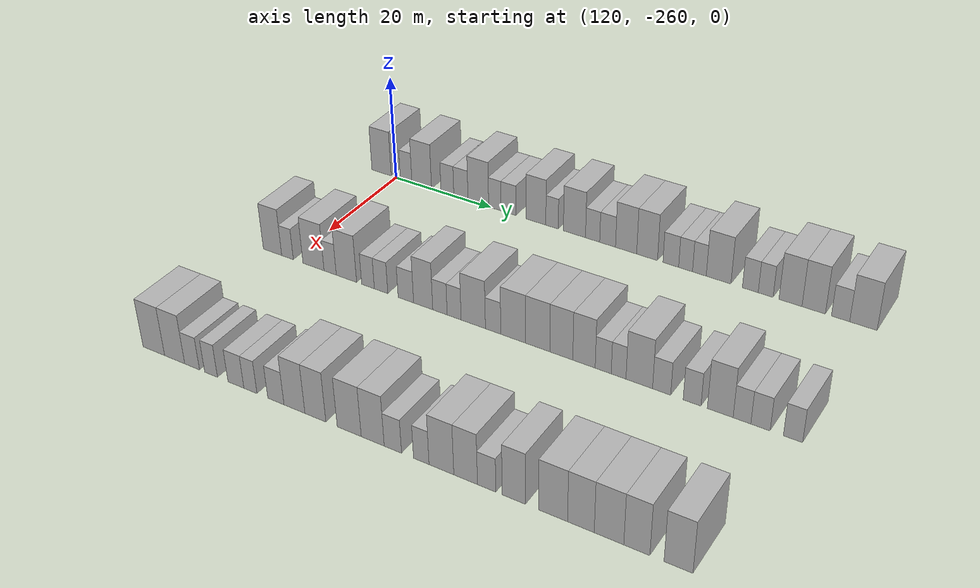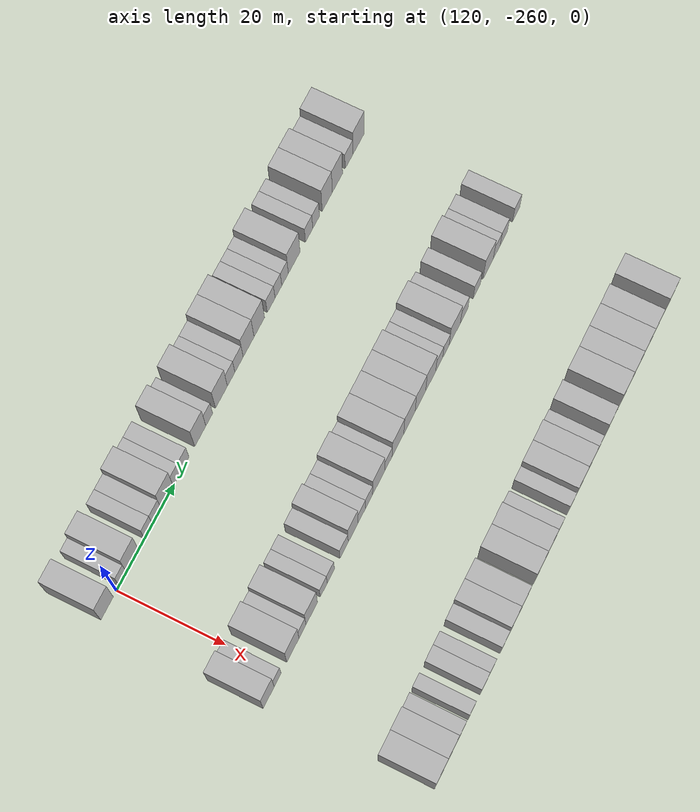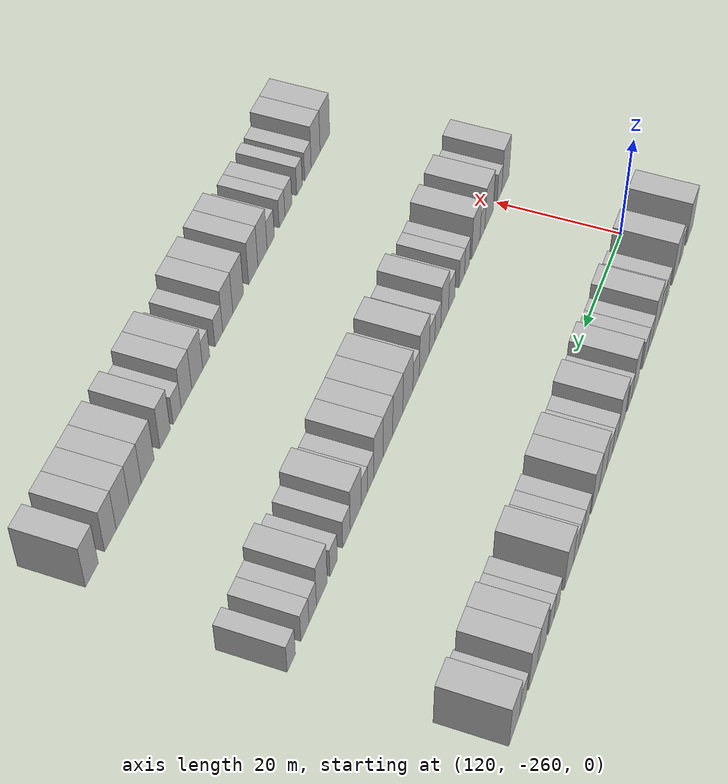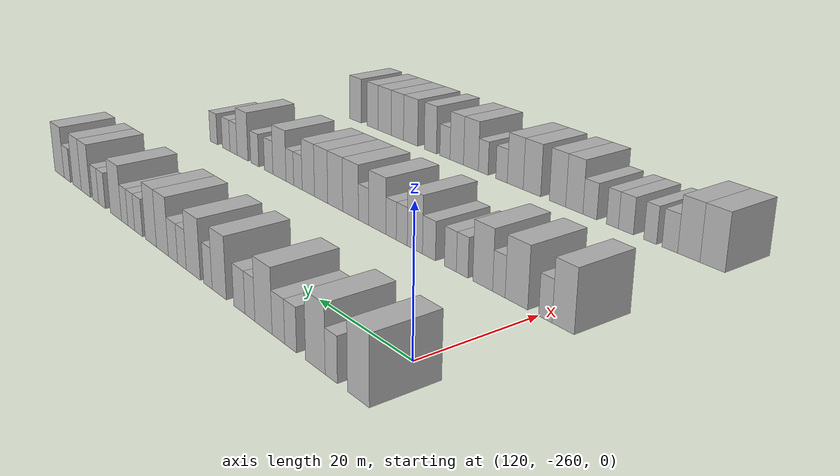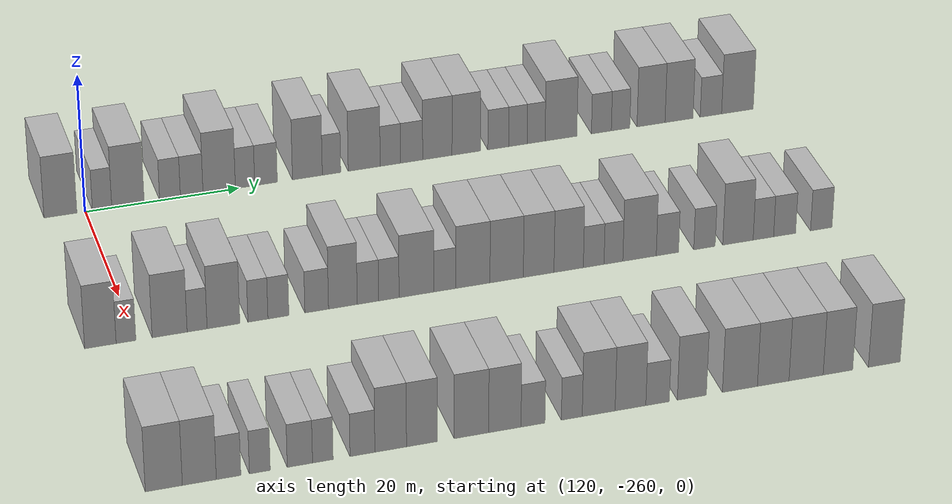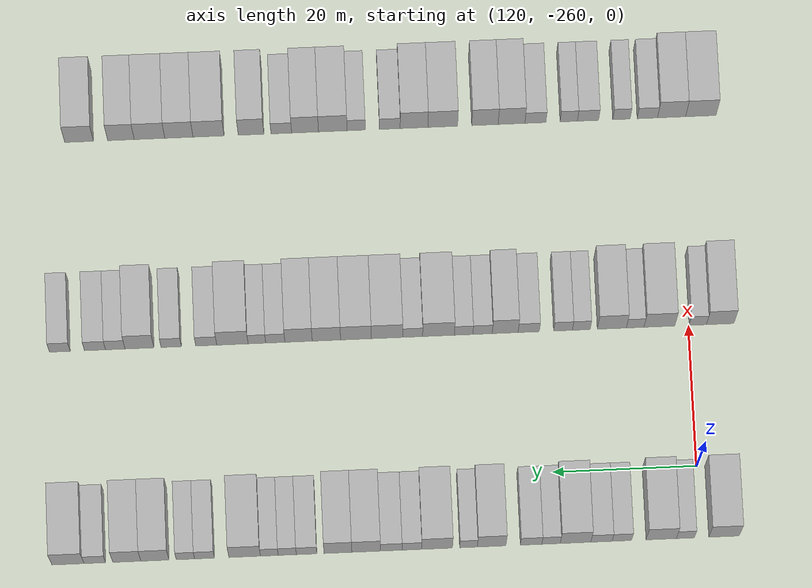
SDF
<sdf version="1.6">
 <world name="default">
  <model name="building_759">
   <static>1</static>
   <pose>115.0000 -263.2295 0 0.000000 0.000000 0.000000</pose>
   <link name="link">
    <pose>0 0 4.50 0 0 0</pose>
    <collision name="collision"><geometry><box><size>10.0000 4.2278 9.0000</size></box></geometry></collision>
    <visual name="visual">
     <cast_shadows>0</cast_shadows>
     <geometry><box><size>10.0000 4.2278 9.0000</size></box></geometry>
     <material>
      <script>
       <uri>model://HANNAS_wall/materials/scripts</uri>
       <uri>model://HANNAS_wall/materials/textures</uri>
       <name>vrc/HANNAS_wall</name>
      </script>
     </material>
    </visual>
   </link>
  </model>
  <model name="building_760">
   <static>1</static>
   <pose>115.0000 -257.8661 0 0.000000 0.000000 0.000000</pose>
   <link name="link">
    <pose>0 0 3.00 0 0 0</pose>
    <collision name="collision"><geometry><box><size>10.0000 2.4988 6.0000</size></box></geometry></collision>
    <visual name="visual">
     <cast_shadows>0</cast_shadows>
     <geometry><box><size>10.0000 2.4988 6.0000</size></box></geometry>
     <material>
      <script>
       <uri>model://HANNAS_wall/materials/scripts</uri>
       <uri>model://HANNAS_wall/materials/textures</uri>
       <name>vrc/HANNAS_wall</name>
      </script>
     </material>
    </visual>
   </link>
  </model>
  <model name="building_761">
   <static>1</static>
   <pose>115.0000 -254.5155 0 0.000000 0.000000 0.000000</pose>
   <link name="link">
    <pose>0 0 4.50 0 0 0</pose>
    <collision name="collision"><geometry><box><size>10.0000 4.2024 9.0000</size></box></geometry></collision>
    <visual name="visual">
     <cast_shadows>0</cast_shadows>
     <geometry><box><size>10.0000 4.2024 9.0000</size></box></geometry>
     <material>
      <script>
       <uri>model://HANNAS_wall/materials/scripts</uri>
       <uri>model://HANNAS_wall/materials/textures</uri>
       <name>vrc/HANNAS_wall</name>
      </script>
     </material>
    </visual>
   </link>
  </model>
  <model name="building_762">
   <static>1</static>
   <pose>115.0000 -249.0612 0 0.000000 0.000000 0.000000</pose>
   <link name="link">
    <pose>0 0 3.00 0 0 0</pose>
    <collision name="collision"><geometry><box><size>10.0000 2.7063 6.0000</size></box></geometry></collision>
    <visual name="visual">
     <cast_shadows>0</cast_shadows>
     <geometry><box><size>10.0000 2.7063 6.0000</size></box></geometry>
     <material>
      <script>
       <uri>model://HANNAS_wall/materials/scripts</uri>
       <uri>model://HANNAS_wall/materials/textures</uri>
       <name>vrc/HANNAS_wall</name>
      </script>
     </material>
    </visual>
   </link>
  </model>
  <model name="building_763">
   <static>1</static>
   <pose>115.0000 -246.2289 0 0.000000 0.000000 0.000000</pose>
   <link name="link">
    <pose>0 0 3.00 0 0 0</pose>
    <collision name="collision"><geometry><box><size>10.0000 2.9582 6.0000</size></box></geometry></collision>
    <visual name="visual">
     <cast_shadows>0</cast_shadows>
     <geometry><box><size>10.0000 2.9582 6.0000</size></box></geometry>
     <material>
      <script>
       <uri>model://HANNAS_wall/materials/scripts</uri>
       <uri>model://HANNAS_wall/materials/textures</uri>
       <name>vrc/HANNAS_wall</name>
      </script>
     </material>
    </visual>
   </link>
  </model>
  <model name="building_764">
   <static>1</static>
   <pose>115.0000 -242.6266 0 0.000000 0.000000 0.000000</pose>
   <link name="link">
    <pose>0 0 4.50 0 0 0</pose>
    <collision name="collision"><geometry><box><size>10.0000 4.2465 9.0000</size></box></geometry></collision>
    <visual name="visual">
     <cast_shadows>0</cast_shadows>
     <geometry><box><size>10.0000 4.2465 9.0000</size></box></geometry>
     <material>
      <script>
       <uri>model://HANNAS_wall/materials/scripts</uri>
       <uri>model://HANNAS_wall/materials/textures</uri>
       <name>vrc/HANNAS_wall</name>
      </script>
     </material>
    </visual>
   </link>
  </model>
  <model name="building_765">
   <static>1</static>
   <pose>115.0000 -239.2334 0 0.000000 0.000000 0.000000</pose>
   <link name="link">
    <pose>0 0 3.00 0 0 0</pose>
    <collision name="collision"><geometry><box><size>10.0000 2.5398 6.0000</size></box></geometry></collision>
    <visual name="visual">
     <cast_shadows>0</cast_shadows>
     <geometry><box><size>10.0000 2.5398 6.0000</size></box></geometry>
     <material>
      <script>
       <uri>model://HANNAS_wall/materials/scripts</uri>
       <uri>model://HANNAS_wall/materials/textures</uri>
       <name>vrc/HANNAS_wall</name>
      </script>
     </material>
    </visual>
   </link>
  </model>
  <model name="building_766">
   <static>1</static>
   <pose>115.0000 -236.4723 0 0.000000 0.000000 0.000000</pose>
   <link name="link">
    <pose>0 0 3.00 0 0 0</pose>
    <collision name="collision"><geometry><box><size>10.0000 2.9823 6.0000</size></box></geometry></collision>
    <visual name="visual">
     <cast_shadows>0</cast_shadows>
     <geometry><box><size>10.0000 2.9823 6.0000</size></box></geometry>
     <material>
      <script>
       <uri>model://HANNAS_wall/materials/scripts</uri>
       <uri>model://HANNAS_wall/materials/textures</uri>
       <name>vrc/HANNAS_wall</name>
      </script>
     </material>
    </visual>
   </link>
  </model>
  <model name="building_767">
   <static>1</static>
   <pose>115.0000 -231.0017 0 0.000000 0.000000 0.000000</pose>
   <link name="link">
    <pose>0 0 4.50 0 0 0</pose>
    <collision name="collision"><geometry><box><size>10.0000 3.9590 9.0000</size></box></geometry></collision>
    <visual name="visual">
     <cast_shadows>0</cast_shadows>
     <geometry><box><size>10.0000 3.9590 9.0000</size></box></geometry>
     <material>
      <script>
       <uri>model://HANNAS_wall/materials/scripts</uri>
       <uri>model://HANNAS_wall/materials/textures</uri>
       <name>vrc/HANNAS_wall</name>
      </script>
     </material>
    </visual>
   </link>
  </model>
  <model name="building_768">
   <static>1</static>
   <pose>115.0000 -227.7995 0 0.000000 0.000000 0.000000</pose>
   <link name="link">
    <pose>0 0 3.00 0 0 0</pose>
    <collision name="collision"><geometry><box><size>10.0000 2.4453 6.0000</size></box></geometry></collision>
    <visual name="visual">
     <cast_shadows>0</cast_shadows>
     <geometry><box><size>10.0000 2.4453 6.0000</size></box></geometry>
     <material>
      <script>
       <uri>model://HANNAS_wall/materials/scripts</uri>
       <uri>model://HANNAS_wall/materials/textures</uri>
       <name>vrc/HANNAS_wall</name>
      </script>
     </material>
    </visual>
   </link>
  </model>
  <model name="building_769">
   <static>1</static>
   <pose>115.0000 -223.4400 0 0.000000 0.000000 0.000000</pose>
   <link name="link">
    <pose>0 0 4.50 0 0 0</pose>
    <collision name="collision"><geometry><box><size>10.0000 4.2738 9.0000</size></box></geometry></collision>
    <visual name="visual">
     <cast_shadows>0</cast_shadows>
     <geometry><box><size>10.0000 4.2738 9.0000</size></box></geometry>
     <material>
      <script>
       <uri>model://HANNAS_wall/materials/scripts</uri>
       <uri>model://HANNAS_wall/materials/textures</uri>
       <name>vrc/HANNAS_wall</name>
      </script>
     </material>
    </visual>
   </link>
  </model>
  <model name="building_770">
   <static>1</static>
   <pose>115.0000 -219.9478 0 0.000000 0.000000 0.000000</pose>
   <link name="link">
    <pose>0 0 3.00 0 0 0</pose>
    <collision name="collision"><geometry><box><size>10.0000 2.7105 6.0000</size></box></geometry></collision>
    <visual name="visual">
     <cast_shadows>0</cast_shadows>
     <geometry><box><size>10.0000 2.7105 6.0000</size></box></geometry>
     <material>
      <script>
       <uri>model://HANNAS_wall/materials/scripts</uri>
       <uri>model://HANNAS_wall/materials/textures</uri>
       <name>vrc/HANNAS_wall</name>
      </script>
     </material>
    </visual>
   </link>
  </model>
  <model name="building_771">
   <static>1</static>
   <pose>115.0000 -217.0970 0 0.000000 0.000000 0.000000</pose>
   <link name="link">
    <pose>0 0 3.00 0 0 0</pose>
    <collision name="collision"><geometry><box><size>10.0000 2.9911 6.0000</size></box></geometry></collision>
    <visual name="visual">
     <cast_shadows>0</cast_shadows>
     <geometry><box><size>10.0000 2.9911 6.0000</size></box></geometry>
     <material>
      <script>
       <uri>model://HANNAS_wall/materials/scripts</uri>
       <uri>model://HANNAS_wall/materials/textures</uri>
       <name>vrc/HANNAS_wall</name>
      </script>
     </material>
    </visual>
   </link>
  </model>
  <model name="building_772">
   <static>1</static>
   <pose>115.0000 -213.6219 0 0.000000 0.000000 0.000000</pose>
   <link name="link">
    <pose>0 0 4.50 0 0 0</pose>
    <collision name="collision"><geometry><box><size>10.0000 3.9590 9.0000</size></box></geometry></collision>
    <visual name="visual">
     <cast_shadows>0</cast_shadows>
     <geometry><box><size>10.0000 3.9590 9.0000</size></box></geometry>
     <material>
      <script>
       <uri>model://HANNAS_wall/materials/scripts</uri>
       <uri>model://HANNAS_wall/materials/textures</uri>
       <name>vrc/HANNAS_wall</name>
      </script>
     </material>
    </visual>
   </link>
  </model>
  <model name="building_773">
   <static>1</static>
   <pose>115.0000 -209.7196 0 0.000000 0.000000 0.000000</pose>
   <link name="link">
    <pose>0 0 4.50 0 0 0</pose>
    <collision name="collision"><geometry><box><size>10.0000 3.8456 9.0000</size></box></geometry></collision>
    <visual name="visual">
     <cast_shadows>0</cast_shadows>
     <geometry><box><size>10.0000 3.8456 9.0000</size></box></geometry>
     <material>
      <script>
       <uri>model://HANNAS_wall/materials/scripts</uri>
       <uri>model://HANNAS_wall/materials/textures</uri>
       <name>vrc/HANNAS_wall</name>
      </script>
     </material>
    </visual>
   </link>
  </model>
  <model name="building_774">
   <static>1</static>
   <pose>115.0000 -205.3716 0 0.000000 0.000000 0.000000</pose>
   <link name="link">
    <pose>0 0 3.00 0 0 0</pose>
    <collision name="collision"><geometry><box><size>10.0000 2.8504 6.0000</size></box></geometry></collision>
    <visual name="visual">
     <cast_shadows>0</cast_shadows>
     <geometry><box><size>10.0000 2.8504 6.0000</size></box></geometry>
     <material>
      <script>
       <uri>model://HANNAS_wall/materials/scripts</uri>
       <uri>model://HANNAS_wall/materials/textures</uri>
       <name>vrc/HANNAS_wall</name>
      </script>
     </material>
    </visual>
   </link>
  </model>
  <model name="building_775">
   <static>1</static>
   <pose>115.0000 -202.6946 0 0.000000 0.000000 0.000000</pose>
   <link name="link">
    <pose>0 0 3.00 0 0 0</pose>
    <collision name="collision"><geometry><box><size>10.0000 2.5035 6.0000</size></box></geometry></collision>
    <visual name="visual">
     <cast_shadows>0</cast_shadows>
     <geometry><box><size>10.0000 2.5035 6.0000</size></box></geometry>
     <material>
      <script>
       <uri>model://HANNAS_wall/materials/scripts</uri>
       <uri>model://HANNAS_wall/materials/textures</uri>
       <name>vrc/HANNAS_wall</name>
      </script>
     </material>
    </visual>
   </link>
  </model>
  <model name="building_776">
   <static>1</static>
   <pose>115.0000 -200.2184 0 0.000000 0.000000 0.000000</pose>
   <link name="link">
    <pose>0 0 3.00 0 0 0</pose>
    <collision name="collision"><geometry><box><size>10.0000 2.4488 6.0000</size></box></geometry></collision>
    <visual name="visual">
     <cast_shadows>0</cast_shadows>
     <geometry><box><size>10.0000 2.4488 6.0000</size></box></geometry>
     <material>
      <script>
       <uri>model://HANNAS_wall/materials/scripts</uri>
       <uri>model://HANNAS_wall/materials/textures</uri>
       <name>vrc/HANNAS_wall</name>
      </script>
     </material>
    </visual>
   </link>
  </model>
  <model name="building_777">
   <static>1</static>
   <pose>115.0000 -196.8125 0 0.000000 0.000000 0.000000</pose>
   <link name="link">
    <pose>0 0 4.50 0 0 0</pose>
    <collision name="collision"><geometry><box><size>10.0000 4.3631 9.0000</size></box></geometry></collision>
    <visual name="visual">
     <cast_shadows>0</cast_shadows>
     <geometry><box><size>10.0000 4.3631 9.0000</size></box></geometry>
     <material>
      <script>
       <uri>model://HANNAS_wall/materials/scripts</uri>
       <uri>model://HANNAS_wall/materials/textures</uri>
       <name>vrc/HANNAS_wall</name>
      </script>
     </material>
    </visual>
   </link>
  </model>
  <model name="building_778">
   <static>1</static>
   <pose>115.0000 -191.2589 0 0.000000 0.000000 0.000000</pose>
   <link name="link">
    <pose>0 0 3.00 0 0 0</pose>
    <collision name="collision"><geometry><box><size>10.0000 2.7440 6.0000</size></box></geometry></collision>
    <visual name="visual">
     <cast_shadows>0</cast_shadows>
     <geometry><box><size>10.0000 2.7440 6.0000</size></box></geometry>
     <material>
      <script>
       <uri>model://HANNAS_wall/materials/scripts</uri>
       <uri>model://HANNAS_wall/materials/textures</uri>
       <name>vrc/HANNAS_wall</name>
      </script>
     </material>
    </visual>
   </link>
  </model>
  <model name="building_779">
   <static>1</static>
   <pose>115.0000 -188.6119 0 0.000000 0.000000 0.000000</pose>
   <link name="link">
    <pose>0 0 3.00 0 0 0</pose>
    <collision name="collision"><geometry><box><size>10.0000 2.5500 6.0000</size></box></geometry></collision>
    <visual name="visual">
     <cast_shadows>0</cast_shadows>
     <geometry><box><size>10.0000 2.5500 6.0000</size></box></geometry>
     <material>
      <script>
       <uri>model://HANNAS_wall/materials/scripts</uri>
       <uri>model://HANNAS_wall/materials/textures</uri>
       <name>vrc/HANNAS_wall</name>
      </script>
     </material>
    </visual>
   </link>
  </model>
  <model name="building_780">
   <static>1</static>
   <pose>115.0000 -184.3922 0 0.000000 0.000000 0.000000</pose>
   <link name="link">
    <pose>0 0 4.50 0 0 0</pose>
    <collision name="collision"><geometry><box><size>10.0000 3.8893 9.0000</size></box></geometry></collision>
    <visual name="visual">
     <cast_shadows>0</cast_shadows>
     <geometry><box><size>10.0000 3.8893 9.0000</size></box></geometry>
     <material>
      <script>
       <uri>model://HANNAS_wall/materials/scripts</uri>
       <uri>model://HANNAS_wall/materials/textures</uri>
       <name>vrc/HANNAS_wall</name>
      </script>
     </material>
    </visual>
   </link>
  </model>
  <model name="building_781">
   <static>1</static>
   <pose>115.0000 -180.4992 0 0.000000 0.000000 0.000000</pose>
   <link name="link">
    <pose>0 0 4.50 0 0 0</pose>
    <collision name="collision"><geometry><box><size>10.0000 3.8968 9.0000</size></box></geometry></collision>
    <visual name="visual">
     <cast_shadows>0</cast_shadows>
     <geometry><box><size>10.0000 3.8968 9.0000</size></box></geometry>
     <material>
      <script>
       <uri>model://HANNAS_wall/materials/scripts</uri>
       <uri>model://HANNAS_wall/materials/textures</uri>
       <name>vrc/HANNAS_wall</name>
      </script>
     </material>
    </visual>
   </link>
  </model>
  <model name="building_782">
   <static>1</static>
   <pose>115.0000 -176.0541 0 0.000000 0.000000 0.000000</pose>
   <link name="link">
    <pose>0 0 3.00 0 0 0</pose>
    <collision name="collision"><geometry><box><size>10.0000 2.9934 6.0000</size></box></geometry></collision>
    <visual name="visual">
     <cast_shadows>0</cast_shadows>
     <geometry><box><size>10.0000 2.9934 6.0000</size></box></geometry>
     <material>
      <script>
       <uri>model://HANNAS_wall/materials/scripts</uri>
       <uri>model://HANNAS_wall/materials/textures</uri>
       <name>vrc/HANNAS_wall</name>
      </script>
     </material>
    </visual>
   </link>
  </model>
  <model name="building_783">
   <static>1</static>
   <pose>115.0000 -172.3382 0 0.000000 0.000000 0.000000</pose>
   <link name="link">
    <pose>0 0 4.50 0 0 0</pose>
    <collision name="collision"><geometry><box><size>10.0000 4.4385 9.0000</size></box></geometry></collision>
    <visual name="visual">
     <cast_shadows>0</cast_shadows>
     <geometry><box><size>10.0000 4.4385 9.0000</size></box></geometry>
     <material>
      <script>
       <uri>model://HANNAS_wall/materials/scripts</uri>
       <uri>model://HANNAS_wall/materials/textures</uri>
       <name>vrc/HANNAS_wall</name>
      </script>
     </material>
    </visual>
   </link>
  </model>
  <model name="building_995">
   <static>1</static>
   <pose>145.0000 -264.3862 0 0.000000 0.000000 0.000000</pose>
   <link name="link">
    <pose>0 0 4.50 0 0 0</pose>
    <collision name="collision"><geometry><box><size>10.0000 3.8523 9.0000</size></box></geometry></collision>
    <visual name="visual">
     <cast_shadows>0</cast_shadows>
     <geometry><box><size>10.0000 3.8523 9.0000</size></box></geometry>
     <material>
      <script>
       <uri>model://HANNAS_wall/materials/scripts</uri>
       <uri>model://HANNAS_wall/materials/textures</uri>
       <name>vrc/HANNAS_wall</name>
      </script>
     </material>
    </visual>
   </link>
  </model>
  <model name="building_996">
   <static>1</static>
   <pose>145.0000 -261.2520 0 0.000000 0.000000 0.000000</pose>
   <link name="link">
    <pose>0 0 3.00 0 0 0</pose>
    <collision name="collision"><geometry><box><size>10.0000 2.4161 6.0000</size></box></geometry></collision>
    <visual name="visual">
     <cast_shadows>0</cast_shadows>
     <geometry><box><size>10.0000 2.4161 6.0000</size></box></geometry>
     <material>
      <script>
       <uri>model://HANNAS_wall/materials/scripts</uri>
       <uri>model://HANNAS_wall/materials/textures</uri>
       <name>vrc/HANNAS_wall</name>
      </script>
     </material>
    </visual>
   </link>
  </model>
  <model name="building_997">
   <static>1</static>
   <pose>145.0000 -255.8885 0 0.000000 0.000000 0.000000</pose>
   <link name="link">
    <pose>0 0 4.50 0 0 0</pose>
    <collision name="collision"><geometry><box><size>10.0000 4.3109 9.0000</size></box></geometry></collision>
    <visual name="visual">
     <cast_shadows>0</cast_shadows>
     <geometry><box><size>10.0000 4.3109 9.0000</size></box></geometry>
     <material>
      <script>
       <uri>model://HANNAS_wall/materials/scripts</uri>
       <uri>model://HANNAS_wall/materials/textures</uri>
       <name>vrc/HANNAS_wall</name>
      </script>
     </material>
    </visual>
   </link>
  </model>
  <model name="building_998">
   <static>1</static>
   <pose>145.0000 -252.4991 0 0.000000 0.000000 0.000000</pose>
   <link name="link">
    <pose>0 0 3.00 0 0 0</pose>
    <collision name="collision"><geometry><box><size>10.0000 2.4679 6.0000</size></box></geometry></collision>
    <visual name="visual">
     <cast_shadows>0</cast_shadows>
     <geometry><box><size>10.0000 2.4679 6.0000</size></box></geometry>
     <material>
      <script>
       <uri>model://HANNAS_wall/materials/scripts</uri>
       <uri>model://HANNAS_wall/materials/textures</uri>
       <name>vrc/HANNAS_wall</name>
      </script>
     </material>
    </visual>
   </link>
  </model>
  <model name="building_999">
   <static>1</static>
   <pose>145.0000 -249.2318 0 0.000000 0.000000 0.000000</pose>
   <link name="link">
    <pose>0 0 4.50 0 0 0</pose>
    <collision name="collision"><geometry><box><size>10.0000 4.0667 9.0000</size></box></geometry></collision>
    <visual name="visual">
     <cast_shadows>0</cast_shadows>
     <geometry><box><size>10.0000 4.0667 9.0000</size></box></geometry>
     <material>
      <script>
       <uri>model://HANNAS_wall/materials/scripts</uri>
       <uri>model://HANNAS_wall/materials/textures</uri>
       <name>vrc/HANNAS_wall</name>
      </script>
     </material>
    </visual>
   </link>
  </model>
  <model name="building_1000">
   <static>1</static>
   <pose>145.0000 -244.9512 0 0.000000 0.000000 0.000000</pose>
   <link name="link">
    <pose>0 0 3.00 0 0 0</pose>
    <collision name="collision"><geometry><box><size>10.0000 2.4946 6.0000</size></box></geometry></collision>
    <visual name="visual">
     <cast_shadows>0</cast_shadows>
     <geometry><box><size>10.0000 2.4946 6.0000</size></box></geometry>
     <material>
      <script>
       <uri>model://HANNAS_wall/materials/scripts</uri>
       <uri>model://HANNAS_wall/materials/textures</uri>
       <name>vrc/HANNAS_wall</name>
      </script>
     </material>
    </visual>
   </link>
  </model>
  <model name="building_1001">
   <static>1</static>
   <pose>145.0000 -242.3934 0 0.000000 0.000000 0.000000</pose>
   <link name="link">
    <pose>0 0 3.00 0 0 0</pose>
    <collision name="collision"><geometry><box><size>10.0000 2.6209 6.0000</size></box></geometry></collision>
    <visual name="visual">
     <cast_shadows>0</cast_shadows>
     <geometry><box><size>10.0000 2.6209 6.0000</size></box></geometry>
     <material>
      <script>
       <uri>model://HANNAS_wall/materials/scripts</uri>
       <uri>model://HANNAS_wall/materials/textures</uri>
       <name>vrc/HANNAS_wall</name>
      </script>
     </material>
    </visual>
   </link>
  </model>
  <model name="building_1002">
   <static>1</static>
   <pose>145.0000 -237.5970 0 0.000000 0.000000 0.000000</pose>
   <link name="link">
    <pose>0 0 3.00 0 0 0</pose>
    <collision name="collision"><geometry><box><size>10.0000 2.9719 6.0000</size></box></geometry></collision>
    <visual name="visual">
     <cast_shadows>0</cast_shadows>
     <geometry><box><size>10.0000 2.9719 6.0000</size></box></geometry>
     <material>
      <script>
       <uri>model://HANNAS_wall/materials/scripts</uri>
       <uri>model://HANNAS_wall/materials/textures</uri>
       <name>vrc/HANNAS_wall</name>
      </script>
     </material>
    </visual>
   </link>
  </model>
  <model name="building_1003">
   <static>1</static>
   <pose>145.0000 -234.3013 0 0.000000 0.000000 0.000000</pose>
   <link name="link">
    <pose>0 0 4.50 0 0 0</pose>
    <collision name="collision"><geometry><box><size>10.0000 3.6195 9.0000</size></box></geometry></collision>
    <visual name="visual">
     <cast_shadows>0</cast_shadows>
     <geometry><box><size>10.0000 3.6195 9.0000</size></box></geometry>
     <material>
      <script>
       <uri>model://HANNAS_wall/materials/scripts</uri>
       <uri>model://HANNAS_wall/materials/textures</uri>
       <name>vrc/HANNAS_wall</name>
      </script>
     </material>
    </visual>
   </link>
  </model>
  <model name="building_1004">
   <static>1</static>
   <pose>145.0000 -231.1403 0 0.000000 0.000000 0.000000</pose>
   <link name="link">
    <pose>0 0 3.00 0 0 0</pose>
    <collision name="collision"><geometry><box><size>10.0000 2.7026 6.0000</size></box></geometry></collision>
    <visual name="visual">
     <cast_shadows>0</cast_shadows>
     <geometry><box><size>10.0000 2.7026 6.0000</size></box></geometry>
     <material>
      <script>
       <uri>model://HANNAS_wall/materials/scripts</uri>
       <uri>model://HANNAS_wall/materials/textures</uri>
       <name>vrc/HANNAS_wall</name>
      </script>
     </material>
    </visual>
   </link>
  </model>
  <model name="building_1005">
   <static>1</static>
   <pose>145.0000 -228.4924 0 0.000000 0.000000 0.000000</pose>
   <link name="link">
    <pose>0 0 3.00 0 0 0</pose>
    <collision name="collision"><geometry><box><size>10.0000 2.5932 6.0000</size></box></geometry></collision>
    <visual name="visual">
     <cast_shadows>0</cast_shadows>
     <geometry><box><size>10.0000 2.5932 6.0000</size></box></geometry>
     <material>
      <script>
       <uri>model://HANNAS_wall/materials/scripts</uri>
       <uri>model://HANNAS_wall/materials/textures</uri>
       <name>vrc/HANNAS_wall</name>
      </script>
     </material>
    </visual>
   </link>
  </model>
  <model name="building_1006">
   <static>1</static>
   <pose>145.0000 -224.9736 0 0.000000 0.000000 0.000000</pose>
   <link name="link">
    <pose>0 0 4.50 0 0 0</pose>
    <collision name="collision"><geometry><box><size>10.0000 4.4444 9.0000</size></box></geometry></collision>
    <visual name="visual">
     <cast_shadows>0</cast_shadows>
     <geometry><box><size>10.0000 4.4444 9.0000</size></box></geometry>
     <material>
      <script>
       <uri>model://HANNAS_wall/materials/scripts</uri>
       <uri>model://HANNAS_wall/materials/textures</uri>
       <name>vrc/HANNAS_wall</name>
      </script>
     </material>
    </visual>
   </link>
  </model>
  <model name="building_1007">
   <static>1</static>
   <pose>145.0000 -221.3632 0 0.000000 0.000000 0.000000</pose>
   <link name="link">
    <pose>0 0 3.00 0 0 0</pose>
    <collision name="collision"><geometry><box><size>10.0000 2.7764 6.0000</size></box></geometry></collision>
    <visual name="visual">
     <cast_shadows>0</cast_shadows>
     <geometry><box><size>10.0000 2.7764 6.0000</size></box></geometry>
     <material>
      <script>
       <uri>model://HANNAS_wall/materials/scripts</uri>
       <uri>model://HANNAS_wall/materials/textures</uri>
       <name>vrc/HANNAS_wall</name>
      </script>
     </material>
    </visual>
   </link>
  </model>
  <model name="building_1008">
   <static>1</static>
   <pose>145.0000 -217.7835 0 0.000000 0.000000 0.000000</pose>
   <link name="link">
    <pose>0 0 4.50 0 0 0</pose>
    <collision name="collision"><geometry><box><size>10.0000 4.3830 9.0000</size></box></geometry></collision>
    <visual name="visual">
     <cast_shadows>0</cast_shadows>
     <geometry><box><size>10.0000 4.3830 9.0000</size></box></geometry>
     <material>
      <script>
       <uri>model://HANNAS_wall/materials/scripts</uri>
       <uri>model://HANNAS_wall/materials/textures</uri>
       <name>vrc/HANNAS_wall</name>
      </script>
     </material>
    </visual>
   </link>
  </model>
  <model name="building_1009">
   <static>1</static>
   <pose>145.0000 -213.4428 0 0.000000 0.000000 0.000000</pose>
   <link name="link">
    <pose>0 0 4.50 0 0 0</pose>
    <collision name="collision"><geometry><box><size>10.0000 4.2984 9.0000</size></box></geometry></collision>
    <visual name="visual">
     <cast_shadows>0</cast_shadows>
     <geometry><box><size>10.0000 4.2984 9.0000</size></box></geometry>
     <material>
      <script>
       <uri>model://HANNAS_wall/materials/scripts</uri>
       <uri>model://HANNAS_wall/materials/textures</uri>
       <name>vrc/HANNAS_wall</name>
      </script>
     </material>
    </visual>
   </link>
  </model>
  <model name="building_1010">
   <static>1</static>
   <pose>145.0000 -209.3129 0 0.000000 0.000000 0.000000</pose>
   <link name="link">
    <pose>0 0 4.50 0 0 0</pose>
    <collision name="collision"><geometry><box><size>10.0000 3.9614 9.0000</size></box></geometry></collision>
    <visual name="visual">
     <cast_shadows>0</cast_shadows>
     <geometry><box><size>10.0000 3.9614 9.0000</size></box></geometry>
     <material>
      <script>
       <uri>model://HANNAS_wall/materials/scripts</uri>
       <uri>model://HANNAS_wall/materials/textures</uri>
       <name>vrc/HANNAS_wall</name>
      </script>
     </material>
    </visual>
   </link>
  </model>
  <model name="building_1011">
   <static>1</static>
   <pose>145.0000 -205.4252 0 0.000000 0.000000 0.000000</pose>
   <link name="link">
    <pose>0 0 4.50 0 0 0</pose>
    <collision name="collision"><geometry><box><size>10.0000 3.8138 9.0000</size></box></geometry></collision>
    <visual name="visual">
     <cast_shadows>0</cast_shadows>
     <geometry><box><size>10.0000 3.8138 9.0000</size></box></geometry>
     <material>
      <script>
       <uri>model://HANNAS_wall/materials/scripts</uri>
       <uri>model://HANNAS_wall/materials/textures</uri>
       <name>vrc/HANNAS_wall</name>
      </script>
     </material>
    </visual>
   </link>
  </model>
  <model name="building_1012">
   <static>1</static>
   <pose>145.0000 -202.1724 0 0.000000 0.000000 0.000000</pose>
   <link name="link">
    <pose>0 0 3.00 0 0 0</pose>
    <collision name="collision"><geometry><box><size>10.0000 2.6918 6.0000</size></box></geometry></collision>
    <visual name="visual">
     <cast_shadows>0</cast_shadows>
     <geometry><box><size>10.0000 2.6918 6.0000</size></box></geometry>
     <material>
      <script>
       <uri>model://HANNAS_wall/materials/scripts</uri>
       <uri>model://HANNAS_wall/materials/textures</uri>
       <name>vrc/HANNAS_wall</name>
      </script>
     </material>
    </visual>
   </link>
  </model>
  <model name="building_1013">
   <static>1</static>
   <pose>145.0000 -199.5962 0 0.000000 0.000000 0.000000</pose>
   <link name="link">
    <pose>0 0 3.00 0 0 0</pose>
    <collision name="collision"><geometry><box><size>10.0000 2.4608 6.0000</size></box></geometry></collision>
    <visual name="visual">
     <cast_shadows>0</cast_shadows>
     <geometry><box><size>10.0000 2.4608 6.0000</size></box></geometry>
     <material>
      <script>
       <uri>model://HANNAS_wall/materials/scripts</uri>
       <uri>model://HANNAS_wall/materials/textures</uri>
       <name>vrc/HANNAS_wall</name>
      </script>
     </material>
    </visual>
   </link>
  </model>
  <model name="building_1014">
   <static>1</static>
   <pose>145.0000 -196.1781 0 0.000000 0.000000 0.000000</pose>
   <link name="link">
    <pose>0 0 4.50 0 0 0</pose>
    <collision name="collision"><geometry><box><size>10.0000 4.3753 9.0000</size></box></geometry></collision>
    <visual name="visual">
     <cast_shadows>0</cast_shadows>
     <geometry><box><size>10.0000 4.3753 9.0000</size></box></geometry>
     <material>
      <script>
       <uri>model://HANNAS_wall/materials/scripts</uri>
       <uri>model://HANNAS_wall/materials/textures</uri>
       <name>vrc/HANNAS_wall</name>
      </script>
     </material>
    </visual>
   </link>
  </model>
  <model name="building_1015">
   <static>1</static>
   <pose>145.0000 -192.5220 0 0.000000 0.000000 0.000000</pose>
   <link name="link">
    <pose>0 0 3.00 0 0 0</pose>
    <collision name="collision"><geometry><box><size>10.0000 2.9368 6.0000</size></box></geometry></collision>
    <visual name="visual">
     <cast_shadows>0</cast_shadows>
     <geometry><box><size>10.0000 2.9368 6.0000</size></box></geometry>
     <material>
      <script>
       <uri>model://HANNAS_wall/materials/scripts</uri>
       <uri>model://HANNAS_wall/materials/textures</uri>
       <name>vrc/HANNAS_wall</name>
      </script>
     </material>
    </visual>
   </link>
  </model>
  <model name="building_1016">
   <static>1</static>
   <pose>145.0000 -187.6378 0 0.000000 0.000000 0.000000</pose>
   <link name="link">
    <pose>0 0 3.00 0 0 0</pose>
    <collision name="collision"><geometry><box><size>10.0000 2.8316 6.0000</size></box></geometry></collision>
    <visual name="visual">
     <cast_shadows>0</cast_shadows>
     <geometry><box><size>10.0000 2.8316 6.0000</size></box></geometry>
     <material>
      <script>
       <uri>model://HANNAS_wall/materials/scripts</uri>
       <uri>model://HANNAS_wall/materials/textures</uri>
       <name>vrc/HANNAS_wall</name>
      </script>
     </material>
    </visual>
   </link>
  </model>
  <model name="building_1017">
   <static>1</static>
   <pose>145.0000 -183.2030 0 0.000000 0.000000 0.000000</pose>
   <link name="link">
    <pose>0 0 4.50 0 0 0</pose>
    <collision name="collision"><geometry><box><size>10.0000 4.0380 9.0000</size></box></geometry></collision>
    <visual name="visual">
     <cast_shadows>0</cast_shadows>
     <geometry><box><size>10.0000 4.0380 9.0000</size></box></geometry>
     <material>
      <script>
       <uri>model://HANNAS_wall/materials/scripts</uri>
       <uri>model://HANNAS_wall/materials/textures</uri>
       <name>vrc/HANNAS_wall</name>
      </script>
     </material>
    </visual>
   </link>
  </model>
  <model name="building_1018">
   <static>1</static>
   <pose>145.0000 -179.8190 0 0.000000 0.000000 0.000000</pose>
   <link name="link">
    <pose>0 0 3.00 0 0 0</pose>
    <collision name="collision"><geometry><box><size>10.0000 2.7301 6.0000</size></box></geometry></collision>
    <visual name="visual">
     <cast_shadows>0</cast_shadows>
     <geometry><box><size>10.0000 2.7301 6.0000</size></box></geometry>
     <material>
      <script>
       <uri>model://HANNAS_wall/materials/scripts</uri>
       <uri>model://HANNAS_wall/materials/textures</uri>
       <name>vrc/HANNAS_wall</name>
      </script>
     </material>
    </visual>
   </link>
  </model>
  <model name="building_1019">
   <static>1</static>
   <pose>145.0000 -176.9852 0 0.000000 0.000000 0.000000</pose>
   <link name="link">
    <pose>0 0 3.00 0 0 0</pose>
    <collision name="collision"><geometry><box><size>10.0000 2.9375 6.0000</size></box></geometry></collision>
    <visual name="visual">
     <cast_shadows>0</cast_shadows>
     <geometry><box><size>10.0000 2.9375 6.0000</size></box></geometry>
     <material>
      <script>
       <uri>model://HANNAS_wall/materials/scripts</uri>
       <uri>model://HANNAS_wall/materials/textures</uri>
       <name>vrc/HANNAS_wall</name>
      </script>
     </material>
    </visual>
   </link>
  </model>
  <model name="building_1020">
   <static>1</static>
   <pose>145.0000 -172.0757 0 0.000000 0.000000 0.000000</pose>
   <link name="link">
    <pose>0 0 3.00 0 0 0</pose>
    <collision name="collision"><geometry><box><size>10.0000 2.8814 6.0000</size></box></geometry></collision>
    <visual name="visual">
     <cast_shadows>0</cast_shadows>
     <geometry><box><size>10.0000 2.8814 6.0000</size></box></geometry>
     <material>
      <script>
       <uri>model://HANNAS_wall/materials/scripts</uri>
       <uri>model://HANNAS_wall/materials/textures</uri>
       <name>vrc/HANNAS_wall</name>
      </script>
     </material>
    </visual>
   </link>
  </model>
  <model name="building_1205">
   <static>1</static>
   <pose>175.0000 -263.3486 0 0.000000 0.000000 0.000000</pose>
   <link name="link">
    <pose>0 0 4.50 0 0 0</pose>
    <collision name="collision"><geometry><box><size>10.0000 4.3083 9.0000</size></box></geometry></collision>
    <visual name="visual">
     <cast_shadows>0</cast_shadows>
     <geometry><box><size>10.0000 4.3083 9.0000</size></box></geometry>
     <material>
      <script>
       <uri>model://HANNAS_wall/materials/scripts</uri>
       <uri>model://HANNAS_wall/materials/textures</uri>
       <name>vrc/HANNAS_wall</name>
      </script>
     </material>
    </visual>
   </link>
  </model>
  <model name="building_1206">
   <static>1</static>
   <pose>175.0000 -259.2153 0 0.000000 0.000000 0.000000</pose>
   <link name="link">
    <pose>0 0 4.50 0 0 0</pose>
    <collision name="collision"><geometry><box><size>10.0000 3.9581 9.0000</size></box></geometry></collision>
    <visual name="visual">
     <cast_shadows>0</cast_shadows>
     <geometry><box><size>10.0000 3.9581 9.0000</size></box></geometry>
     <material>
      <script>
       <uri>model://HANNAS_wall/materials/scripts</uri>
       <uri>model://HANNAS_wall/materials/textures</uri>
       <name>vrc/HANNAS_wall</name>
      </script>
     </material>
    </visual>
   </link>
  </model>
  <model name="building_1207">
   <static>1</static>
   <pose>175.0000 -255.7996 0 0.000000 0.000000 0.000000</pose>
   <link name="link">
    <pose>0 0 3.00 0 0 0</pose>
    <collision name="collision"><geometry><box><size>10.0000 2.8733 6.0000</size></box></geometry></collision>
    <visual name="visual">
     <cast_shadows>0</cast_shadows>
     <geometry><box><size>10.0000 2.8733 6.0000</size></box></geometry>
     <material>
      <script>
       <uri>model://HANNAS_wall/materials/scripts</uri>
       <uri>model://HANNAS_wall/materials/textures</uri>
       <name>vrc/HANNAS_wall</name>
      </script>
     </material>
    </visual>
   </link>
  </model>
  <model name="building_1208">
   <static>1</static>
   <pose>175.0000 -252.1364 0 0.000000 0.000000 0.000000</pose>
   <link name="link">
    <pose>0 0 3.00 0 0 0</pose>
    <collision name="collision"><geometry><box><size>10.0000 2.4531 6.0000</size></box></geometry></collision>
    <visual name="visual">
     <cast_shadows>0</cast_shadows>
     <geometry><box><size>10.0000 2.4531 6.0000</size></box></geometry>
     <material>
      <script>
       <uri>model://HANNAS_wall/materials/scripts</uri>
       <uri>model://HANNAS_wall/materials/textures</uri>
       <name>vrc/HANNAS_wall</name>
      </script>
     </material>
    </visual>
   </link>
  </model>
  <model name="building_1209">
   <static>1</static>
   <pose>175.0000 -247.4146 0 0.000000 0.000000 0.000000</pose>
   <link name="link">
    <pose>0 0 3.00 0 0 0</pose>
    <collision name="collision"><geometry><box><size>10.0000 2.9907 6.0000</size></box></geometry></collision>
    <visual name="visual">
     <cast_shadows>0</cast_shadows>
     <geometry><box><size>10.0000 2.9907 6.0000</size></box></geometry>
     <material>
      <script>
       <uri>model://HANNAS_wall/materials/scripts</uri>
       <uri>model://HANNAS_wall/materials/textures</uri>
       <name>vrc/HANNAS_wall</name>
      </script>
     </material>
    </visual>
   </link>
  </model>
  <model name="building_1210">
   <static>1</static>
   <pose>175.0000 -244.6993 0 0.000000 0.000000 0.000000</pose>
   <link name="link">
    <pose>0 0 3.00 0 0 0</pose>
    <collision name="collision"><geometry><box><size>10.0000 2.4397 6.0000</size></box></geometry></collision>
    <visual name="visual">
     <cast_shadows>0</cast_shadows>
     <geometry><box><size>10.0000 2.4397 6.0000</size></box></geometry>
     <material>
      <script>
       <uri>model://HANNAS_wall/materials/scripts</uri>
       <uri>model://HANNAS_wall/materials/textures</uri>
       <name>vrc/HANNAS_wall</name>
      </script>
     </material>
    </visual>
   </link>
  </model>
  <model name="building_1211">
   <static>1</static>
   <pose>175.0000 -239.9947 0 0.000000 0.000000 0.000000</pose>
   <link name="link">
    <pose>0 0 3.00 0 0 0</pose>
    <collision name="collision"><geometry><box><size>10.0000 2.9695 6.0000</size></box></geometry></collision>
    <visual name="visual">
     <cast_shadows>0</cast_shadows>
     <geometry><box><size>10.0000 2.9695 6.0000</size></box></geometry>
     <material>
      <script>
       <uri>model://HANNAS_wall/materials/scripts</uri>
       <uri>model://HANNAS_wall/materials/textures</uri>
       <name>vrc/HANNAS_wall</name>
      </script>
     </material>
    </visual>
   </link>
  </model>
  <model name="building_1212">
   <static>1</static>
   <pose>175.0000 -236.6204 0 0.000000 0.000000 0.000000</pose>
   <link name="link">
    <pose>0 0 4.50 0 0 0</pose>
    <collision name="collision"><geometry><box><size>10.0000 3.7792 9.0000</size></box></geometry></collision>
    <visual name="visual">
     <cast_shadows>0</cast_shadows>
     <geometry><box><size>10.0000 3.7792 9.0000</size></box></geometry>
     <material>
      <script>
       <uri>model://HANNAS_wall/materials/scripts</uri>
       <uri>model://HANNAS_wall/materials/textures</uri>
       <name>vrc/HANNAS_wall</name>
      </script>
     </material>
    </visual>
   </link>
  </model>
  <model name="building_1213">
   <static>1</static>
   <pose>175.0000 -232.8704 0 0.000000 0.000000 0.000000</pose>
   <link name="link">
    <pose>0 0 4.50 0 0 0</pose>
    <collision name="collision"><geometry><box><size>10.0000 3.7207 9.0000</size></box></geometry></collision>
    <visual name="visual">
     <cast_shadows>0</cast_shadows>
     <geometry><box><size>10.0000 3.7207 9.0000</size></box></geometry>
     <material>
      <script>
       <uri>model://HANNAS_wall/materials/scripts</uri>
       <uri>model://HANNAS_wall/materials/textures</uri>
       <name>vrc/HANNAS_wall</name>
      </script>
     </material>
    </visual>
   </link>
  </model>
  <model name="building_1214">
   <static>1</static>
   <pose>175.0000 -226.9251 0 0.000000 0.000000 0.000000</pose>
   <link name="link">
    <pose>0 0 4.50 0 0 0</pose>
    <collision name="collision"><geometry><box><size>10.0000 4.1699 9.0000</size></box></geometry></collision>
    <visual name="visual">
     <cast_shadows>0</cast_shadows>
     <geometry><box><size>10.0000 4.1699 9.0000</size></box></geometry>
     <material>
      <script>
       <uri>model://HANNAS_wall/materials/scripts</uri>
       <uri>model://HANNAS_wall/materials/textures</uri>
       <name>vrc/HANNAS_wall</name>
      </script>
     </material>
    </visual>
   </link>
  </model>
  <model name="building_1215">
   <static>1</static>
   <pose>175.0000 -222.8763 0 0.000000 0.000000 0.000000</pose>
   <link name="link">
    <pose>0 0 4.50 0 0 0</pose>
    <collision name="collision"><geometry><box><size>10.0000 3.9277 9.0000</size></box></geometry></collision>
    <visual name="visual">
     <cast_shadows>0</cast_shadows>
     <geometry><box><size>10.0000 3.9277 9.0000</size></box></geometry>
     <material>
      <script>
       <uri>model://HANNAS_wall/materials/scripts</uri>
       <uri>model://HANNAS_wall/materials/textures</uri>
       <name>vrc/HANNAS_wall</name>
      </script>
     </material>
    </visual>
   </link>
  </model>
  <model name="building_1216">
   <static>1</static>
   <pose>175.0000 -219.4528 0 0.000000 0.000000 0.000000</pose>
   <link name="link">
    <pose>0 0 3.00 0 0 0</pose>
    <collision name="collision"><geometry><box><size>10.0000 2.9193 6.0000</size></box></geometry></collision>
    <visual name="visual">
     <cast_shadows>0</cast_shadows>
     <geometry><box><size>10.0000 2.9193 6.0000</size></box></geometry>
     <material>
      <script>
       <uri>model://HANNAS_wall/materials/scripts</uri>
       <uri>model://HANNAS_wall/materials/textures</uri>
       <name>vrc/HANNAS_wall</name>
      </script>
     </material>
    </visual>
   </link>
  </model>
  <model name="building_1217">
   <static>1</static>
   <pose>175.0000 -214.7121 0 0.000000 0.000000 0.000000</pose>
   <link name="link">
    <pose>0 0 3.00 0 0 0</pose>
    <collision name="collision"><geometry><box><size>10.0000 2.5621 6.0000</size></box></geometry></collision>
    <visual name="visual">
     <cast_shadows>0</cast_shadows>
     <geometry><box><size>10.0000 2.5621 6.0000</size></box></geometry>
     <material>
      <script>
       <uri>model://HANNAS_wall/materials/scripts</uri>
       <uri>model://HANNAS_wall/materials/textures</uri>
       <name>vrc/HANNAS_wall</name>
      </script>
     </material>
    </visual>
   </link>
  </model>
  <model name="building_1218">
   <static>1</static>
   <pose>175.0000 -211.4123 0 0.000000 0.000000 0.000000</pose>
   <link name="link">
    <pose>0 0 4.50 0 0 0</pose>
    <collision name="collision"><geometry><box><size>10.0000 4.0377 9.0000</size></box></geometry></collision>
    <visual name="visual">
     <cast_shadows>0</cast_shadows>
     <geometry><box><size>10.0000 4.0377 9.0000</size></box></geometry>
     <material>
      <script>
       <uri>model://HANNAS_wall/materials/scripts</uri>
       <uri>model://HANNAS_wall/materials/textures</uri>
       <name>vrc/HANNAS_wall</name>
      </script>
     </material>
    </visual>
   </link>
  </model>
  <model name="building_1219">
   <static>1</static>
   <pose>175.0000 -207.4958 0 0.000000 0.000000 0.000000</pose>
   <link name="link">
    <pose>0 0 4.50 0 0 0</pose>
    <collision name="collision"><geometry><box><size>10.0000 3.7952 9.0000</size></box></geometry></collision>
    <visual name="visual">
     <cast_shadows>0</cast_shadows>
     <geometry><box><size>10.0000 3.7952 9.0000</size></box></geometry>
     <material>
      <script>
       <uri>model://HANNAS_wall/materials/scripts</uri>
       <uri>model://HANNAS_wall/materials/textures</uri>
       <name>vrc/HANNAS_wall</name>
      </script>
     </material>
    </visual>
   </link>
  </model>
  <model name="building_1220">
   <static>1</static>
   <pose>175.0000 -204.1469 0 0.000000 0.000000 0.000000</pose>
   <link name="link">
    <pose>0 0 3.00 0 0 0</pose>
    <collision name="collision"><geometry><box><size>10.0000 2.9027 6.0000</size></box></geometry></collision>
    <visual name="visual">
     <cast_shadows>0</cast_shadows>
     <geometry><box><size>10.0000 2.9027 6.0000</size></box></geometry>
     <material>
      <script>
       <uri>model://HANNAS_wall/materials/scripts</uri>
       <uri>model://HANNAS_wall/materials/textures</uri>
       <name>vrc/HANNAS_wall</name>
      </script>
     </material>
    </visual>
   </link>
  </model>
  <model name="building_1221">
   <static>1</static>
   <pose>175.0000 -199.8882 0 0.000000 0.000000 0.000000</pose>
   <link name="link">
    <pose>0 0 4.50 0 0 0</pose>
    <collision name="collision"><geometry><box><size>10.0000 3.6146 9.0000</size></box></geometry></collision>
    <visual name="visual">
     <cast_shadows>0</cast_shadows>
     <geometry><box><size>10.0000 3.6146 9.0000</size></box></geometry>
     <material>
      <script>
       <uri>model://HANNAS_wall/materials/scripts</uri>
       <uri>model://HANNAS_wall/materials/textures</uri>
       <name>vrc/HANNAS_wall</name>
      </script>
     </material>
    </visual>
   </link>
  </model>
  <model name="building_1222">
   <static>1</static>
   <pose>175.0000 -193.8906 0 0.000000 0.000000 0.000000</pose>
   <link name="link">
    <pose>0 0 4.50 0 0 0</pose>
    <collision name="collision"><geometry><box><size>10.0000 4.3807 9.0000</size></box></geometry></collision>
    <visual name="visual">
     <cast_shadows>0</cast_shadows>
     <geometry><box><size>10.0000 4.3807 9.0000</size></box></geometry>
     <material>
      <script>
       <uri>model://HANNAS_wall/materials/scripts</uri>
       <uri>model://HANNAS_wall/materials/textures</uri>
       <name>vrc/HANNAS_wall</name>
      </script>
     </material>
    </visual>
   </link>
  </model>
  <model name="building_1223">
   <static>1</static>
   <pose>175.0000 -189.7128 0 0.000000 0.000000 0.000000</pose>
   <link name="link">
    <pose>0 0 4.50 0 0 0</pose>
    <collision name="collision"><geometry><box><size>10.0000 3.9750 9.0000</size></box></geometry></collision>
    <visual name="visual">
     <cast_shadows>0</cast_shadows>
     <geometry><box><size>10.0000 3.9750 9.0000</size></box></geometry>
     <material>
      <script>
       <uri>model://HANNAS_wall/materials/scripts</uri>
       <uri>model://HANNAS_wall/materials/textures</uri>
       <name>vrc/HANNAS_wall</name>
      </script>
     </material>
    </visual>
   </link>
  </model>
  <model name="building_1224">
   <static>1</static>
   <pose>175.0000 -185.5675 0 0.000000 0.000000 0.000000</pose>
   <link name="link">
    <pose>0 0 4.50 0 0 0</pose>
    <collision name="collision"><geometry><box><size>10.0000 4.3155 9.0000</size></box></geometry></collision>
    <visual name="visual">
     <cast_shadows>0</cast_shadows>
     <geometry><box><size>10.0000 4.3155 9.0000</size></box></geometry>
     <material>
      <script>
       <uri>model://HANNAS_wall/materials/scripts</uri>
       <uri>model://HANNAS_wall/materials/textures</uri>
       <name>vrc/HANNAS_wall</name>
      </script>
     </material>
    </visual>
   </link>
  </model>
  <model name="building_1225">
   <static>1</static>
   <pose>175.0000 -181.5386 0 0.000000 0.000000 0.000000</pose>
   <link name="link">
    <pose>0 0 4.50 0 0 0</pose>
    <collision name="collision"><geometry><box><size>10.0000 3.7423 9.0000</size></box></geometry></collision>
    <visual name="visual">
     <cast_shadows>0</cast_shadows>
     <geometry><box><size>10.0000 3.7423 9.0000</size></box></geometry>
     <material>
      <script>
       <uri>model://HANNAS_wall/materials/scripts</uri>
       <uri>model://HANNAS_wall/materials/textures</uri>
       <name>vrc/HANNAS_wall</name>
      </script>
     </material>
    </visual>
   </link>
  </model>
  <model name="building_1226">
   <static>1</static>
   <pose>175.0000 -175.6426 0 0.000000 0.000000 0.000000</pose>
   <link name="link">
    <pose>0 0 4.50 0 0 0</pose>
    <collision name="collision"><geometry><box><size>10.0000 4.0497 9.0000</size></box></geometry></collision>
    <visual name="visual">
     <cast_shadows>0</cast_shadows>
     <geometry><box><size>10.0000 4.0497 9.0000</size></box></geometry>
     <material>
      <script>
       <uri>model://HANNAS_wall/materials/scripts</uri>
       <uri>model://HANNAS_wall/materials/textures</uri>
       <name>vrc/HANNAS_wall</name>
      </script>
     </material>
    </visual>
   </link>
  </model>
 </world>
</sdf>
